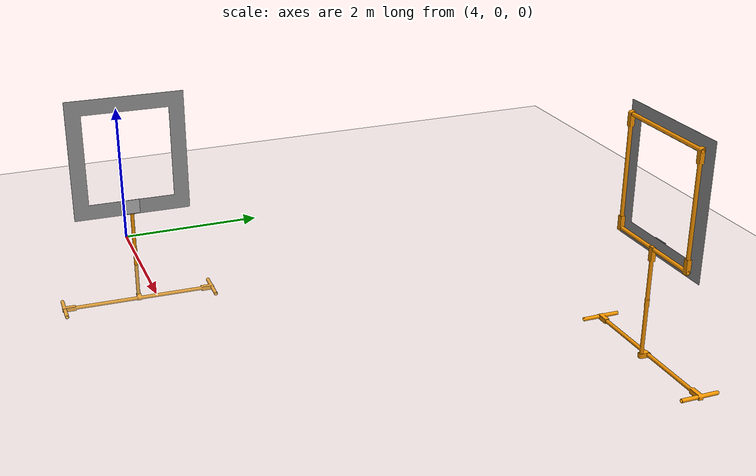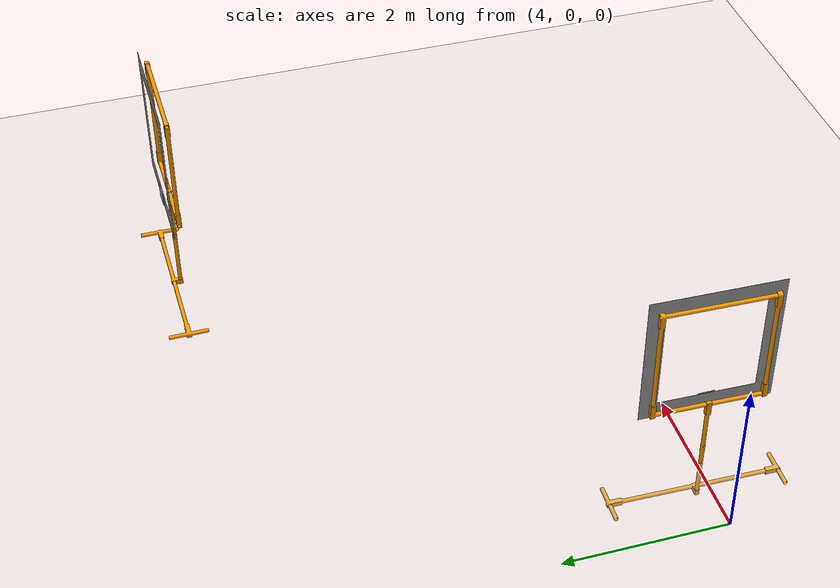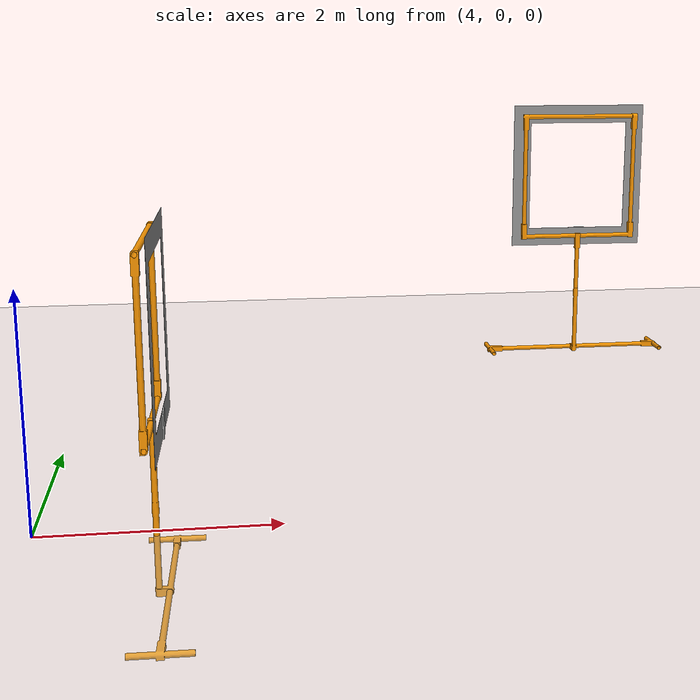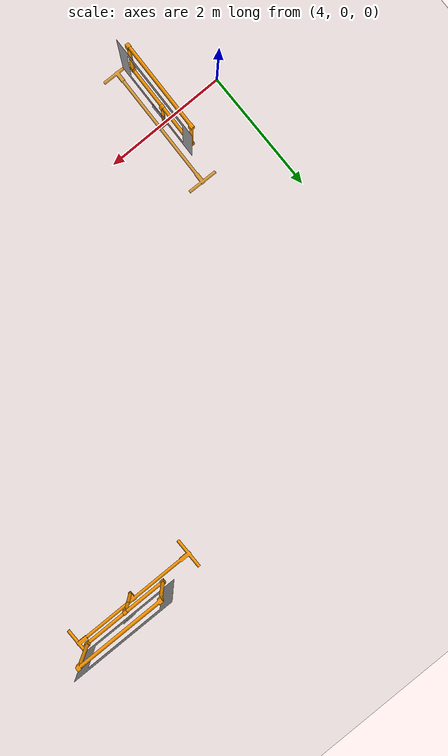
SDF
<sdf version="1.7">
 <world name="default">
  <model name="ground_plane">
   <static>1</static>
   <link name="link">
    <collision name="collision">
     <geometry><plane><normal>0 0 1</normal><size>100 100</size></plane></geometry>
     <surface>
      <contact><collide_bitmask>65535</collide_bitmask></contact>
      <friction><ode><mu>100</mu><mu2>50</mu2></ode></friction>
     </surface>
    </collision>
    <visual name="visual">
     <cast_shadows>0</cast_shadows>
     <geometry><plane><normal>0 0 1</normal><size>100 100</size></plane></geometry>
     <material>
      <script><uri>file://media/materials/scripts/gazebo.material</uri><name>Gazebo/Grey</name></script>
     </material>
    </visual>
   </link>
  </model>
  <model name="Aruco_gate_3">
   <link name="aruco">
    <pose>0.135 0 1.45017 0 -0 1.6</pose>
    <collision name="collision"><geometry><box><size>0.2 0.01 0.2</size></box></geometry></collision>
    <visual name="visual">
     <pose>0 0 0 0 1.57 0</pose>
     <geometry><box><size>0.2 0.01 0.2</size></box></geometry>
     <material>
      <script>
       <uri>model://aruco/materials/scripts</uri>
       <uri>model://aruco/materials/textures</uri>
       <name>aruco_3/Diffuse</name>
      </script>
     </material>
    </visual>
   </link>
   <link name="link_0">
    <pose>-0.126667 1.11221 0.000173 1.57 -0 0</pose>
    <inertial>
     <mass>1</mass>
     <inertia>
      <ixx>0.166667</ixx>
      <ixy>0</ixy>
      <ixz>0</ixz>
      <iyy>0.166667</iyy>
      <iyz>0</iyz>
      <izz>0.166667</izz>
     </inertia>
    </inertial>
    <visual name="visual">
     <geometry><mesh><uri>model://aruco_gate_1/meshes/base.stl</uri><scale>1 1 1</scale></mesh></geometry>
     <material>
      <lighting>1</lighting>
      <script><uri>file://media/materials/scripts/gazebo.material</uri><name>Gazebo/Grey</name></script>
      <ambient>1 0.6 0 1</ambient>
      <diffuse>1 0.6 0 1</diffuse>
      <specular>0.01 0.01 0.01 1</specular>
      <emissive>0 0 0 1</emissive>
      <shader type="vertex"><normal_map>__default__</normal_map></shader>
     </material>
    </visual>
    <collision name="collision">
     <geometry><mesh><uri>model://aruco_gate_1/meshes/base.stl</uri></mesh></geometry>
     <surface>
      <friction>
       <ode><mu>1</mu><mu2>1</mu2><fdir1>0 0 0</fdir1><slip1>0</slip1><slip2>0</slip2></ode>
       <torsional>
        <coefficient>1</coefficient>
        <patch_radius>0</patch_radius>
        <surface_radius>0</surface_radius>
        <use_patch_radius>1</use_patch_radius>
        <ode><slip>0</slip></ode>
       </torsional>
      </friction>
      <bounce><restitution_coefficient>0</restitution_coefficient><threshold>1e+06</threshold></bounce>
      <contact>
       <collide_without_contact>0</collide_without_contact>
       <collide_without_contact_bitmask>1</collide_without_contact_bitmask>
       <collide_bitmask>1</collide_bitmask>
       <ode>
        <soft_cfm>0</soft_cfm>
        <soft_erp>0.2</soft_erp>
        <kp>1e+13</kp>
        <kd>1</kd>
        <max_vel>0.01</max_vel>
        <min_depth>0</min_depth>
       </ode>
       <bullet>
        <split_impulse>1</split_impulse>
        <split_impulse_penetration_threshold>-0.01</split_impulse_penetration_threshold>
        <soft_cfm>0</soft_cfm>
        <soft_erp>0.2</soft_erp>
        <kp>1e+13</kp>
        <kd>1</kd>
       </bullet>
      </contact>
     </surface>
    </collision>
   </link>
   <link name="link_1">
    <pose>0.003333 -0.7 1.40017 0 -0 0</pose>
    <inertial>
     <mass>1</mass>
     <inertia>
      <ixx>0.166667</ixx>
      <ixy>0</ixy>
      <ixz>0</ixz>
      <iyy>0.166667</iyy>
      <iyz>0</iyz>
      <izz>0.166667</izz>
     </inertia>
    </inertial>
    <visual name="visual">
     <geometry><mesh><uri>model://aruco_gate_1/meshes/hoop.stl</uri><scale>1 1 1</scale></mesh></geometry>
     <material>
      <lighting>1</lighting>
      <script><uri>file://media/materials/scripts/gazebo.material</uri><name>Gazebo/Grey</name></script>
      <ambient>1 0.6 0 1</ambient>
      <diffuse>1 0.6 0 1</diffuse>
      <specular>0.01 0.01 0.01 1</specular>
      <emissive>0 0 0 1</emissive>
      <shader type="vertex"><normal_map>__default__</normal_map></shader>
     </material>
    </visual>
    <collision name="collision">
     <geometry><mesh><uri>model://aruco_gate_1/meshes/hoop.stl</uri></mesh></geometry>
     <surface>
      <friction>
       <ode><mu>1</mu><mu2>1</mu2><fdir1>0 0 0</fdir1><slip1>0</slip1><slip2>0</slip2></ode>
       <torsional>
        <coefficient>1</coefficient>
        <patch_radius>0</patch_radius>
        <surface_radius>0</surface_radius>
        <use_patch_radius>1</use_patch_radius>
        <ode><slip>0</slip></ode>
       </torsional>
      </friction>
      <bounce><restitution_coefficient>0</restitution_coefficient><threshold>1e+06</threshold></bounce>
      <contact>
       <collide_without_contact>0</collide_without_contact>
       <collide_without_contact_bitmask>1</collide_without_contact_bitmask>
       <collide_bitmask>1</collide_bitmask>
       <ode>
        <soft_cfm>0</soft_cfm>
        <soft_erp>0.2</soft_erp>
        <kp>1e+13</kp>
        <kd>1</kd>
        <max_vel>0.01</max_vel>
        <min_depth>0</min_depth>
       </ode>
       <bullet>
        <split_impulse>1</split_impulse>
        <split_impulse_penetration_threshold>-0.01</split_impulse_penetration_threshold>
        <soft_cfm>0</soft_cfm>
        <soft_erp>0.2</soft_erp>
        <kp>1e+13</kp>
        <kd>1</kd>
       </bullet>
      </contact>
     </surface>
    </collision>
   </link>
   <link name="link_2">
    <pose>0.123333 -0.797794 3.62017 0 1.57 0</pose>
    <inertial>
     <mass>1</mass>
     <inertia>
      <ixx>0.166667</ixx>
      <ixy>0</ixy>
      <ixz>0</ixz>
      <iyy>0.166667</iyy>
      <iyz>0</iyz>
      <izz>0.166667</izz>
     </inertia>
    </inertial>
    <visual name="visual">
     <geometry><mesh><uri>model://aruco_gate_1/meshes/background.stl</uri><scale>1 1 1</scale></mesh></geometry>
     <material>
      <lighting>1</lighting>
      <script><uri>file://media/materials/scripts/gazebo.material</uri><name>Gazebo/Grey</name></script>
      <ambient>0.9 0.9 0.9 1</ambient>
      <diffuse>0.9 0.9 0.9 1</diffuse>
      <specular>0.01 0.01 0.01 1</specular>
      <emissive>0 0 0 1</emissive>
      <shader type="vertex"><normal_map>__default__</normal_map></shader>
     </material>
    </visual>
    <collision name="collision">
     <geometry><mesh><uri>model://aruco_gate_1/meshes/background.stl</uri></mesh></geometry>
     <surface>
      <friction>
       <ode><mu>1</mu><mu2>1</mu2><fdir1>0 0 0</fdir1><slip1>0</slip1><slip2>0</slip2></ode>
       <torsional>
        <coefficient>1</coefficient>
        <patch_radius>0</patch_radius>
        <surface_radius>0</surface_radius>
        <use_patch_radius>1</use_patch_radius>
        <ode><slip>0</slip></ode>
       </torsional>
      </friction>
      <bounce><restitution_coefficient>0</restitution_coefficient><threshold>1e+06</threshold></bounce>
      <contact>
       <collide_without_contact>0</collide_without_contact>
       <collide_without_contact_bitmask>1</collide_without_contact_bitmask>
       <collide_bitmask>1</collide_bitmask>
       <ode>
        <soft_cfm>0</soft_cfm>
        <soft_erp>0.2</soft_erp>
        <kp>1e+13</kp>
        <kd>1</kd>
        <max_vel>0.01</max_vel>
        <min_depth>0</min_depth>
       </ode>
       <bullet>
        <split_impulse>1</split_impulse>
        <split_impulse_penetration_threshold>-0.01</split_impulse_penetration_threshold>
        <soft_cfm>0</soft_cfm>
        <soft_erp>0.2</soft_erp>
        <kp>1e+13</kp>
        <kd>1</kd>
       </bullet>
      </contact>
     </surface>
    </collision>
   </link>
   <static>1</static>
   <plugin name="gazebo_random_position_plugin" filename="librotors_gazebo_random_position_plugin.so">
    <limitX>0.75</limitX>
    <limitY>0.75</limitY>
    <limitZ>0.5</limitZ>
    <activate_roll>0</activate_roll>
   </plugin>
   <pose>9.86521 5.05046 0.01501 0 -0 1.56864</pose>
  </model>
  <model name="Aruco_gate_4">
   <link name="aruco">
    <pose>0.135 0 1.45017 0 -0 1.6</pose>
    <collision name="collision"><geometry><box><size>0.2 0.01 0.2</size></box></geometry></collision>
    <visual name="visual">
     <pose>0 0 0 0 1.57 0</pose>
     <geometry><box><size>0.2 0.01 0.2</size></box></geometry>
     <material>
      <script>
       <uri>model://aruco/materials/scripts</uri>
       <uri>model://aruco/materials/textures</uri>
       <name>aruco_4/Diffuse</name>
      </script>
     </material>
    </visual>
   </link>
   <link name="link_0">
    <pose>-0.126667 1.11221 0.000173 1.57 -0 0</pose>
    <inertial>
     <mass>1</mass>
     <inertia>
      <ixx>0.166667</ixx>
      <ixy>0</ixy>
      <ixz>0</ixz>
      <iyy>0.166667</iyy>
      <iyz>0</iyz>
      <izz>0.166667</izz>
     </inertia>
    </inertial>
    <visual name="visual">
     <geometry><mesh><uri>model://aruco_gate_1/meshes/base.stl</uri><scale>1 1 1</scale></mesh></geometry>
     <material>
      <lighting>1</lighting>
      <script><uri>file://media/materials/scripts/gazebo.material</uri><name>Gazebo/Grey</name></script>
      <ambient>1 0.6 0 1</ambient>
      <diffuse>1 0.6 0 1</diffuse>
      <specular>0.01 0.01 0.01 1</specular>
      <emissive>0 0 0 1</emissive>
      <shader type="vertex"><normal_map>__default__</normal_map></shader>
     </material>
    </visual>
    <collision name="collision">
     <geometry><mesh><uri>model://aruco_gate_1/meshes/base.stl</uri></mesh></geometry>
     <surface>
      <friction>
       <ode><mu>1</mu><mu2>1</mu2><fdir1>0 0 0</fdir1><slip1>0</slip1><slip2>0</slip2></ode>
       <torsional>
        <coefficient>1</coefficient>
        <patch_radius>0</patch_radius>
        <surface_radius>0</surface_radius>
        <use_patch_radius>1</use_patch_radius>
        <ode><slip>0</slip></ode>
       </torsional>
      </friction>
      <bounce><restitution_coefficient>0</restitution_coefficient><threshold>1e+06</threshold></bounce>
      <contact>
       <collide_without_contact>0</collide_without_contact>
       <collide_without_contact_bitmask>1</collide_without_contact_bitmask>
       <collide_bitmask>1</collide_bitmask>
       <ode>
        <soft_cfm>0</soft_cfm>
        <soft_erp>0.2</soft_erp>
        <kp>1e+13</kp>
        <kd>1</kd>
        <max_vel>0.01</max_vel>
        <min_depth>0</min_depth>
       </ode>
       <bullet>
        <split_impulse>1</split_impulse>
        <split_impulse_penetration_threshold>-0.01</split_impulse_penetration_threshold>
        <soft_cfm>0</soft_cfm>
        <soft_erp>0.2</soft_erp>
        <kp>1e+13</kp>
        <kd>1</kd>
       </bullet>
      </contact>
     </surface>
    </collision>
   </link>
   <link name="link_1">
    <pose>0.003333 -0.7 1.40017 0 -0 0</pose>
    <inertial>
     <mass>1</mass>
     <inertia>
      <ixx>0.166667</ixx>
      <ixy>0</ixy>
      <ixz>0</ixz>
      <iyy>0.166667</iyy>
      <iyz>0</iyz>
      <izz>0.166667</izz>
     </inertia>
    </inertial>
    <visual name="visual">
     <geometry><mesh><uri>model://aruco_gate_1/meshes/hoop.stl</uri><scale>1 1 1</scale></mesh></geometry>
     <material>
      <lighting>1</lighting>
      <script><uri>file://media/materials/scripts/gazebo.material</uri><name>Gazebo/Grey</name></script>
      <ambient>1 0.6 0 1</ambient>
      <diffuse>1 0.6 0 1</diffuse>
      <specular>0.01 0.01 0.01 1</specular>
      <emissive>0 0 0 1</emissive>
      <shader type="vertex"><normal_map>__default__</normal_map></shader>
     </material>
    </visual>
    <collision name="collision">
     <geometry><mesh><uri>model://aruco_gate_1/meshes/hoop.stl</uri></mesh></geometry>
     <surface>
      <friction>
       <ode><mu>1</mu><mu2>1</mu2><fdir1>0 0 0</fdir1><slip1>0</slip1><slip2>0</slip2></ode>
       <torsional>
        <coefficient>1</coefficient>
        <patch_radius>0</patch_radius>
        <surface_radius>0</surface_radius>
        <use_patch_radius>1</use_patch_radius>
        <ode><slip>0</slip></ode>
       </torsional>
      </friction>
      <bounce><restitution_coefficient>0</restitution_coefficient><threshold>1e+06</threshold></bounce>
      <contact>
       <collide_without_contact>0</collide_without_contact>
       <collide_without_contact_bitmask>1</collide_without_contact_bitmask>
       <collide_bitmask>1</collide_bitmask>
       <ode>
        <soft_cfm>0</soft_cfm>
        <soft_erp>0.2</soft_erp>
        <kp>1e+13</kp>
        <kd>1</kd>
        <max_vel>0.01</max_vel>
        <min_depth>0</min_depth>
       </ode>
       <bullet>
        <split_impulse>1</split_impulse>
        <split_impulse_penetration_threshold>-0.01</split_impulse_penetration_threshold>
        <soft_cfm>0</soft_cfm>
        <soft_erp>0.2</soft_erp>
        <kp>1e+13</kp>
        <kd>1</kd>
       </bullet>
      </contact>
     </surface>
    </collision>
   </link>
   <link name="link_2">
    <pose>0.123333 -0.797794 3.62017 0 1.57 0</pose>
    <inertial>
     <mass>1</mass>
     <inertia>
      <ixx>0.166667</ixx>
      <ixy>0</ixy>
      <ixz>0</ixz>
      <iyy>0.166667</iyy>
      <iyz>0</iyz>
      <izz>0.166667</izz>
     </inertia>
    </inertial>
    <visual name="visual">
     <geometry><mesh><uri>model://aruco_gate_1/meshes/background.stl</uri><scale>1 1 1</scale></mesh></geometry>
     <material>
      <lighting>1</lighting>
      <script><uri>file://media/materials/scripts/gazebo.material</uri><name>Gazebo/Grey</name></script>
      <ambient>0.9 0.9 0.9 1</ambient>
      <diffuse>0.9 0.9 0.9 1</diffuse>
      <specular>0.01 0.01 0.01 1</specular>
      <emissive>0 0 0 1</emissive>
      <shader type="vertex"><normal_map>__default__</normal_map></shader>
     </material>
    </visual>
    <collision name="collision">
     <geometry><mesh><uri>model://aruco_gate_1/meshes/background.stl</uri></mesh></geometry>
     <surface>
      <friction>
       <ode><mu>1</mu><mu2>1</mu2><fdir1>0 0 0</fdir1><slip1>0</slip1><slip2>0</slip2></ode>
       <torsional>
        <coefficient>1</coefficient>
        <patch_radius>0</patch_radius>
        <surface_radius>0</surface_radius>
        <use_patch_radius>1</use_patch_radius>
        <ode><slip>0</slip></ode>
       </torsional>
      </friction>
      <bounce><restitution_coefficient>0</restitution_coefficient><threshold>1e+06</threshold></bounce>
      <contact>
       <collide_without_contact>0</collide_without_contact>
       <collide_without_contact_bitmask>1</collide_without_contact_bitmask>
       <collide_bitmask>1</collide_bitmask>
       <ode>
        <soft_cfm>0</soft_cfm>
        <soft_erp>0.2</soft_erp>
        <kp>1e+13</kp>
        <kd>1</kd>
        <max_vel>0.01</max_vel>
        <min_depth>0</min_depth>
       </ode>
       <bullet>
        <split_impulse>1</split_impulse>
        <split_impulse_penetration_threshold>-0.01</split_impulse_penetration_threshold>
        <soft_cfm>0</soft_cfm>
        <soft_erp>0.2</soft_erp>
        <kp>1e+13</kp>
        <kd>1</kd>
       </bullet>
      </contact>
     </surface>
    </collision>
   </link>
   <static>1</static>
   <plugin name="gazebo_random_position_plugin" filename="librotors_gazebo_random_position_plugin.so">
    <limitX>0.75</limitX>
    <limitY>0.75</limitY>
    <limitZ>0.5</limitZ>
    <activate_roll>0</activate_roll>
   </plugin>
   <pose>4.93756 -0.0604 -0.529541 0 0 -0.02299</pose>
  </model>
 </world>
</sdf>
